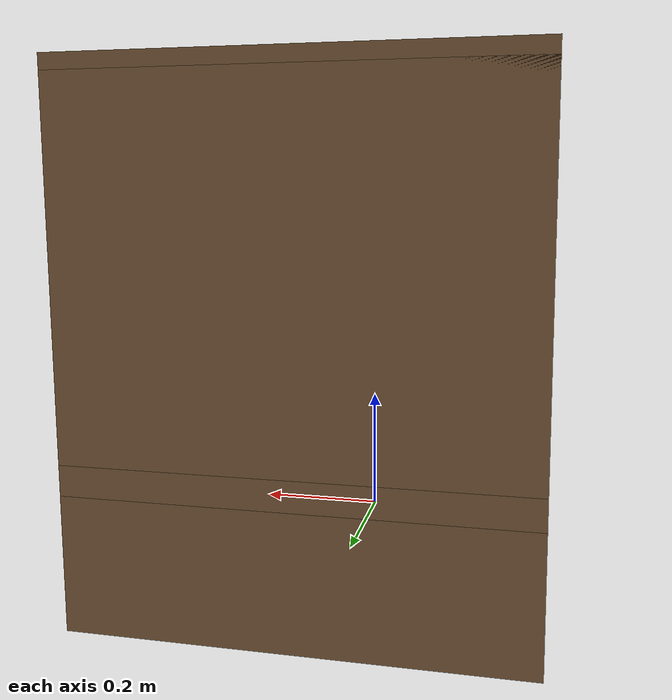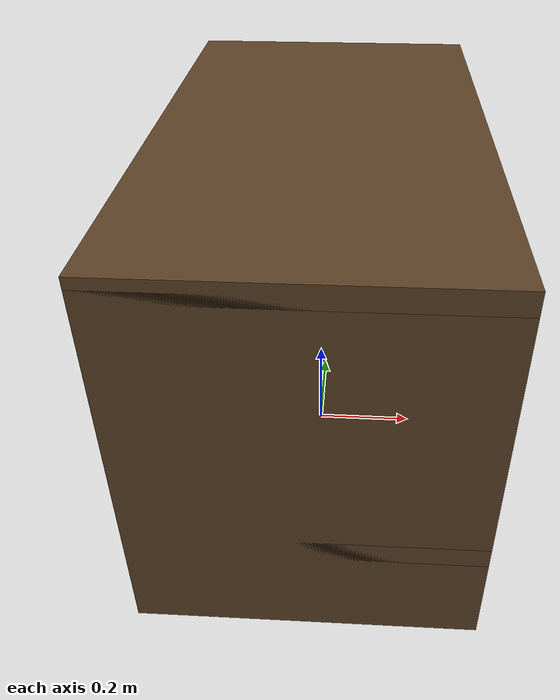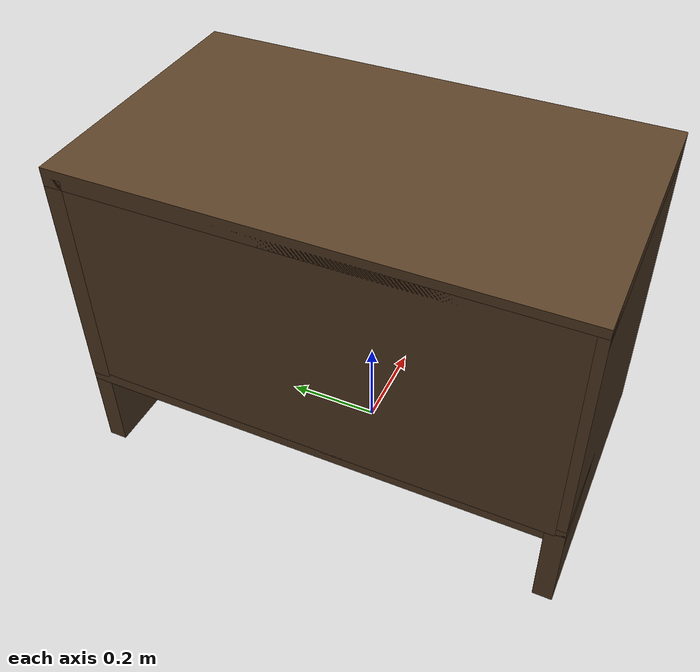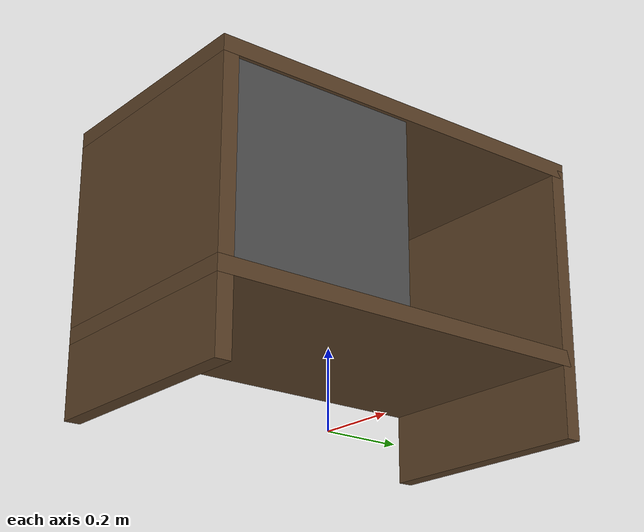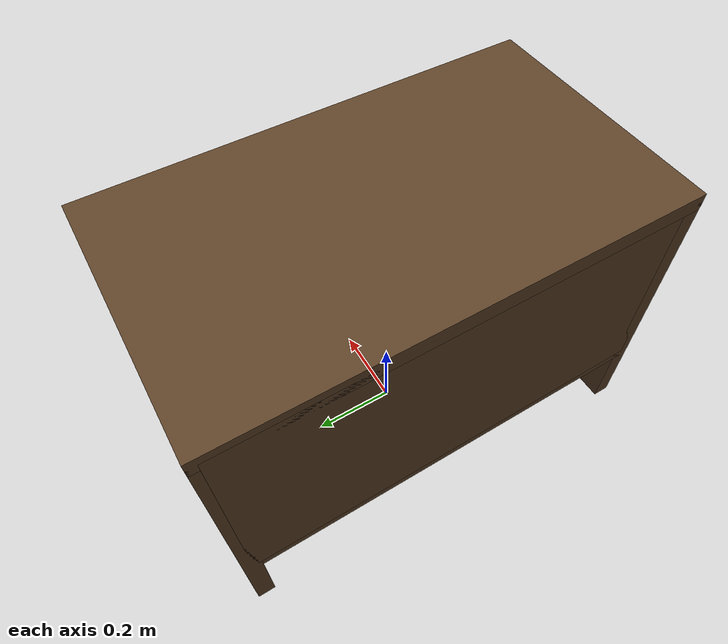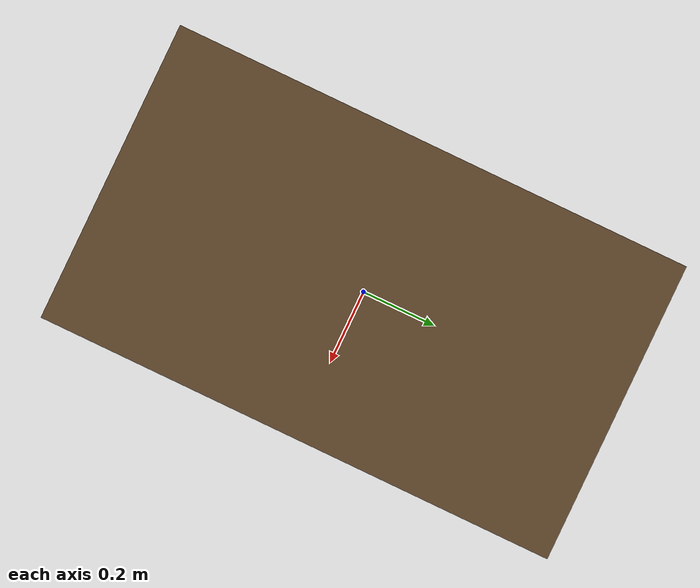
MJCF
<mujoco model="cabinet_half_closed">
  <compiler angle="radian"/>

  <asset>
    <texture type="2d" name="tex_cabinet_half_closed" file="light_wood_v3.png" />
    <material name="mat_cabinet_half_closed" texture="tex_cabinet_half_closed" specular="0.5" shininess="0.5" rgba="0.5 0.5 0.5 1" />
  </asset>

  <worldbody>
    <body name="body_cabinet_half_closed" pos="0 0 0">
      <!-- Cabinet body  -->
      <geom type="box" size="0.3 0.52 0.02" pos="0.0 0.0 0.2" material="mat_cabinet_half_closed" />
      <geom type="box" size="0.3 0.52 0.02" pos="0.0 0.0 0.7" material="mat_cabinet_half_closed" />
      <geom type="box" size="0.02 0.5 0.25" pos="-0.28 0.0 0.45" material="mat_cabinet_half_closed" />
      <geom type="box" size="0.3 0.02 0.35" pos="0.0 0.5 0.35" material="mat_cabinet_half_closed" />
      <geom type="box" size="0.3 0.02 0.35" pos="0.0 -0.5 0.35" material="mat_cabinet_half_closed" />

      <!-- Cabinet door -->
      <geom type="box" size="0.01 0.25 0.25" pos="0.28 -0.25 0.45" rgba="0.3 0.3 0.3 1" />
    </body>
  </worldbody>

</mujoco>
